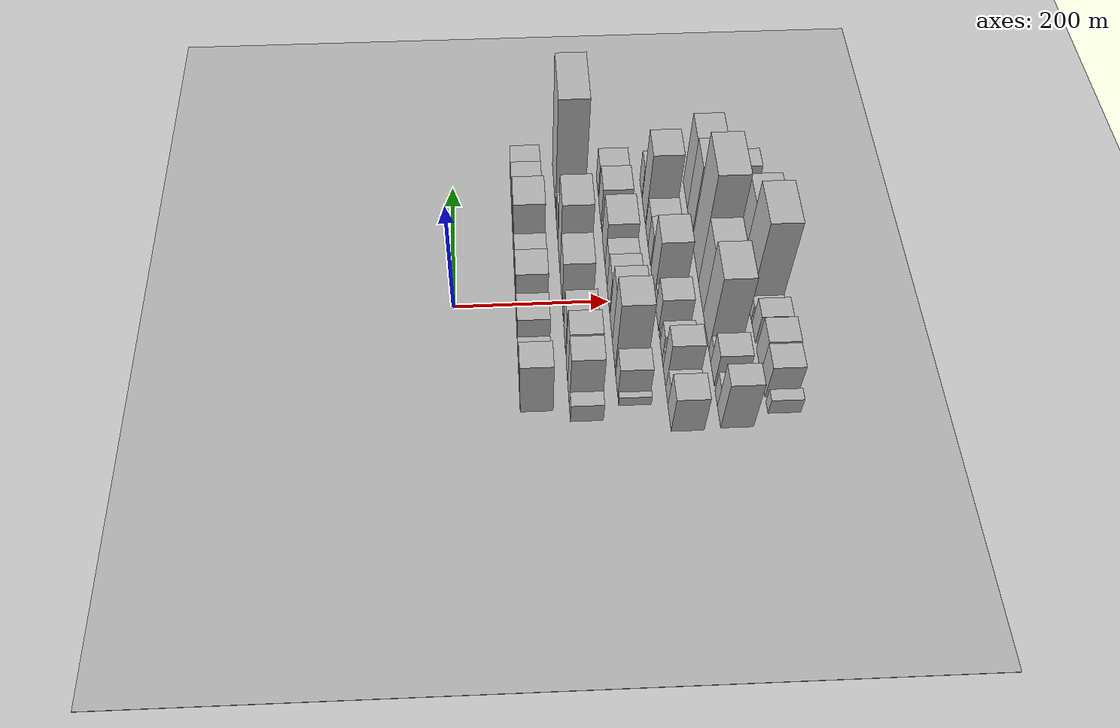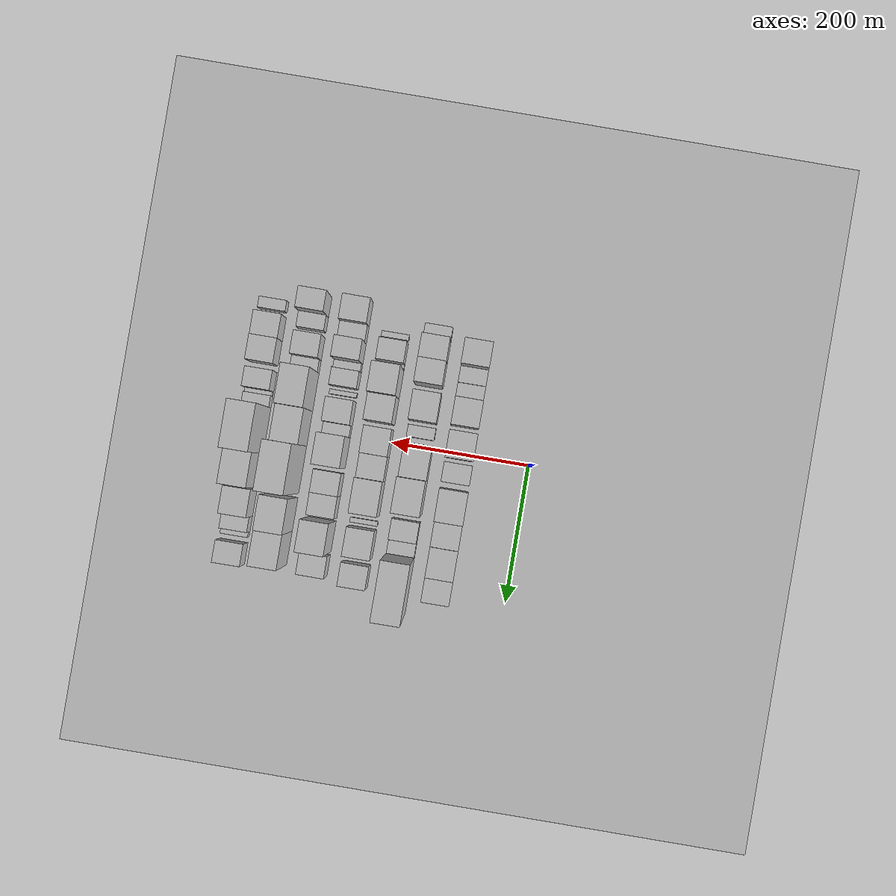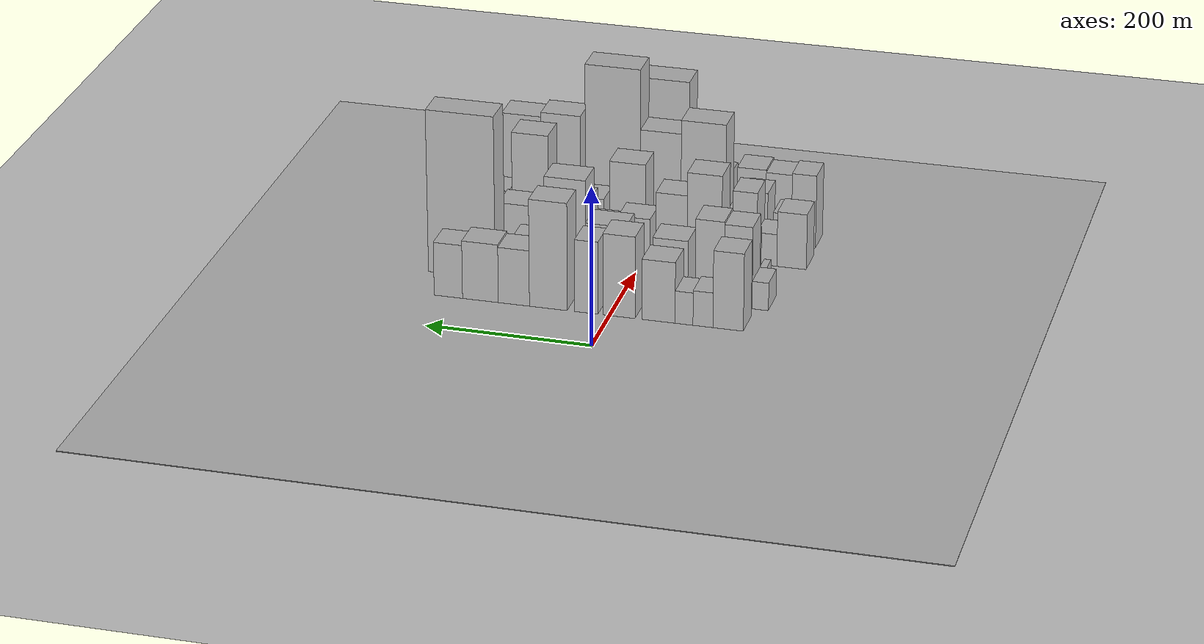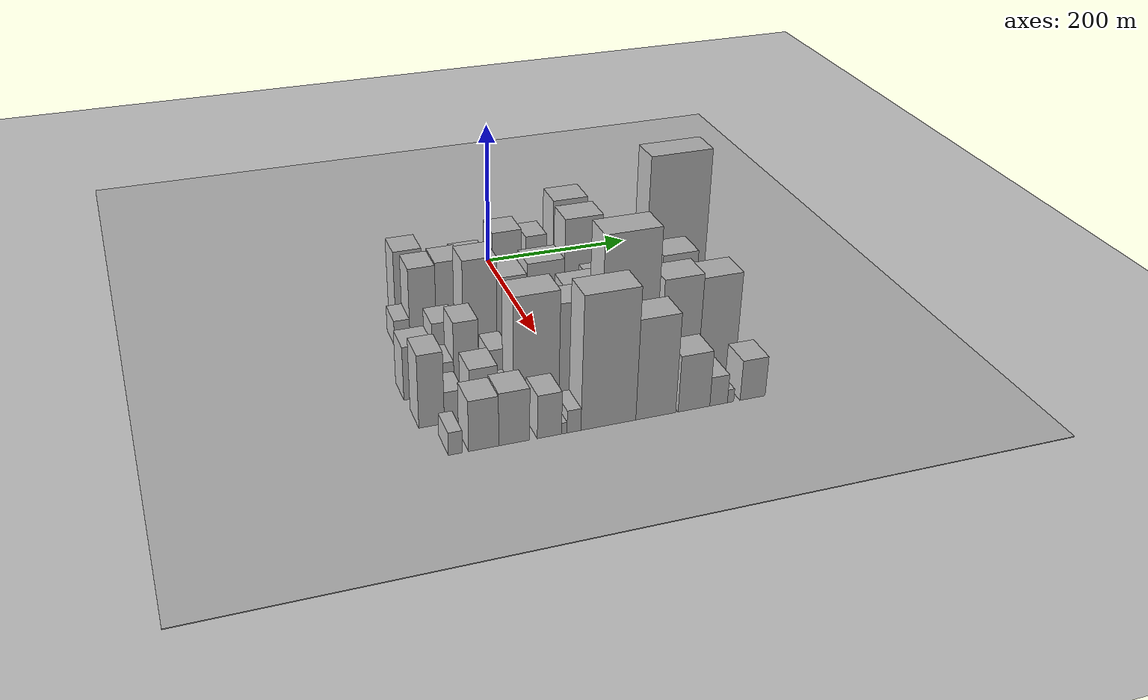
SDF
<sdf version="1.6">
 <world name="default">
  <include><name>ground_plane_1</name><uri>model://HANNAS_ground_plane</uri></include>
  <include>
   <name>ground_plane_2</name>
   <uri>model://HANNAS_ground_plane</uri>
   <pose>100 0 0  0 0 0</pose>
  </include>
  <model name="building_24">
   <static>1</static>
   <pose>100.0000 -141.7538 0 0.000000 0.000000 0.000000</pose>
   <link name="link">
    <pose>0 0 49.50 0 0 0</pose>
    <collision name="collision"><geometry><box><size>40.0000 36.2667 99.0000</size></box></geometry></collision>
    <visual name="visual">
     <cast_shadows>0</cast_shadows>
     <geometry><box><size>40.0000 36.2667 99.0000</size></box></geometry>
     <material>
      <script>
       <uri>model://HANNAS_wall/materials/scripts</uri>
       <uri>model://HANNAS_wall/materials/textures</uri>
       <name>vrc/HANNAS_wall</name>
      </script>
     </material>
    </visual>
   </link>
  </model>
  <model name="building_25">
   <static>1</static>
   <pose>100.0000 -111.7291 0 0.000000 0.000000 0.000000</pose>
   <link name="link">
    <pose>0 0 22.50 0 0 0</pose>
    <collision name="collision"><geometry><box><size>40.0000 23.7827 45.0000</size></box></geometry></collision>
    <visual name="visual">
     <cast_shadows>0</cast_shadows>
     <geometry><box><size>40.0000 23.7827 45.0000</size></box></geometry>
     <material>
      <script>
       <uri>model://HANNAS_wall/materials/scripts</uri>
       <uri>model://HANNAS_wall/materials/textures</uri>
       <name>vrc/HANNAS_wall</name>
      </script>
     </material>
    </visual>
   </link>
  </model>
  <model name="building_26">
   <static>1</static>
   <pose>100.0000 -89.1588 0 0.000000 0.000000 0.000000</pose>
   <link name="link">
    <pose>0 0 21.00 0 0 0</pose>
    <collision name="collision"><geometry><box><size>40.0000 21.3579 42.0000</size></box></geometry></collision>
    <visual name="visual">
     <cast_shadows>0</cast_shadows>
     <geometry><box><size>40.0000 21.3579 42.0000</size></box></geometry>
     <material>
      <script>
       <uri>model://HANNAS_wall/materials/scripts</uri>
       <uri>model://HANNAS_wall/materials/textures</uri>
       <name>vrc/HANNAS_wall</name>
      </script>
     </material>
    </visual>
   </link>
  </model>
  <model name="building_27">
   <static>1</static>
   <pose>100.0000 -58.5543 0 0.000000 0.000000 0.000000</pose>
   <link name="link">
    <pose>0 0 39.00 0 0 0</pose>
    <collision name="collision"><geometry><box><size>40.0000 39.8511 78.0000</size></box></geometry></collision>
    <visual name="visual">
     <cast_shadows>0</cast_shadows>
     <geometry><box><size>40.0000 39.8511 78.0000</size></box></geometry>
     <material>
      <script>
       <uri>model://HANNAS_wall/materials/scripts</uri>
       <uri>model://HANNAS_wall/materials/textures</uri>
       <name>vrc/HANNAS_wall</name>
      </script>
     </material>
    </visual>
   </link>
  </model>
  <model name="building_28">
   <static>1</static>
   <pose>100.0000 -11.2332 0 0.000000 0.000000 0.000000</pose>
   <link name="link">
    <pose>0 0 52.50 0 0 0</pose>
    <collision name="collision"><geometry><box><size>40.0000 38.7913 105.0000</size></box></geometry></collision>
    <visual name="visual">
     <cast_shadows>0</cast_shadows>
     <geometry><box><size>40.0000 38.7913 105.0000</size></box></geometry>
     <material>
      <script>
       <uri>model://HANNAS_wall/materials/scripts</uri>
       <uri>model://HANNAS_wall/materials/textures</uri>
       <name>vrc/HANNAS_wall</name>
      </script>
     </material>
    </visual>
   </link>
  </model>
  <model name="building_29">
   <static>1</static>
   <pose>100.0000 28.2649 0 0.000000 0.000000 0.000000</pose>
   <link name="link">
    <pose>0 0 46.50 0 0 0</pose>
    <collision name="collision"><geometry><box><size>40.0000 28.2048 93.0000</size></box></geometry></collision>
    <visual name="visual">
     <cast_shadows>0</cast_shadows>
     <geometry><box><size>40.0000 28.2048 93.0000</size></box></geometry>
     <material>
      <script>
       <uri>model://HANNAS_wall/materials/scripts</uri>
       <uri>model://HANNAS_wall/materials/textures</uri>
       <name>vrc/HANNAS_wall</name>
      </script>
     </material>
    </visual>
   </link>
  </model>
  <model name="building_30">
   <static>1</static>
   <pose>100.0000 74.3533 0 0.000000 0.000000 0.000000</pose>
   <link name="link">
    <pose>0 0 69.00 0 0 0</pose>
    <collision name="collision"><geometry><box><size>40.0000 45.9720 138.0000</size></box></geometry></collision>
    <visual name="visual">
     <cast_shadows>0</cast_shadows>
     <geometry><box><size>40.0000 45.9720 138.0000</size></box></geometry>
     <material>
      <script>
       <uri>model://HANNAS_wall/materials/scripts</uri>
       <uri>model://HANNAS_wall/materials/textures</uri>
       <name>vrc/HANNAS_wall</name>
      </script>
     </material>
    </visual>
   </link>
  </model>
  <model name="building_31">
   <static>1</static>
   <pose>100.0000 116.2808 0 0.000000 0.000000 0.000000</pose>
   <link name="link">
    <pose>0 0 36.00 0 0 0</pose>
    <collision name="collision"><geometry><box><size>40.0000 37.8829 72.0000</size></box></geometry></collision>
    <visual name="visual">
     <cast_shadows>0</cast_shadows>
     <geometry><box><size>40.0000 37.8829 72.0000</size></box></geometry>
     <material>
      <script>
       <uri>model://HANNAS_wall/materials/scripts</uri>
       <uri>model://HANNAS_wall/materials/textures</uri>
       <name>vrc/HANNAS_wall</name>
      </script>
     </material>
    </visual>
   </link>
  </model>
  <model name="building_32">
   <static>1</static>
   <pose>100.0000 157.1084 0 0.000000 0.000000 0.000000</pose>
   <link name="link">
    <pose>0 0 37.50 0 0 0</pose>
    <collision name="collision"><geometry><box><size>40.0000 43.7723 75.0000</size></box></geometry></collision>
    <visual name="visual">
     <cast_shadows>0</cast_shadows>
     <geometry><box><size>40.0000 43.7723 75.0000</size></box></geometry>
     <material>
      <script>
       <uri>model://HANNAS_wall/materials/scripts</uri>
       <uri>model://HANNAS_wall/materials/textures</uri>
       <name>vrc/HANNAS_wall</name>
      </script>
     </material>
    </visual>
   </link>
  </model>
  <model name="building_33">
   <static>1</static>
   <pose>100.0000 196.3960 0 0.000000 0.000000 0.000000</pose>
   <link name="link">
    <pose>0 0 34.50 0 0 0</pose>
    <collision name="collision"><geometry><box><size>40.0000 34.8030 69.0000</size></box></geometry></collision>
    <visual name="visual">
     <cast_shadows>0</cast_shadows>
     <geometry><box><size>40.0000 34.8030 69.0000</size></box></geometry>
     <material>
      <script>
       <uri>model://HANNAS_wall/materials/scripts</uri>
       <uri>model://HANNAS_wall/materials/textures</uri>
       <name>vrc/HANNAS_wall</name>
      </script>
     </material>
    </visual>
   </link>
  </model>
  <model name="building_78">
   <static>1</static>
   <pose>160.0000 -165.9343 0 0.000000 0.000000 0.000000</pose>
   <link name="link">
    <pose>0 0 18.00 0 0 0</pose>
    <collision name="collision"><geometry><box><size>40.0000 19.7301 36.0000</size></box></geometry></collision>
    <visual name="visual">
     <cast_shadows>0</cast_shadows>
     <geometry><box><size>40.0000 19.7301 36.0000</size></box></geometry>
     <material>
      <script>
       <uri>model://HANNAS_wall/materials/scripts</uri>
       <uri>model://HANNAS_wall/materials/textures</uri>
       <name>vrc/HANNAS_wall</name>
      </script>
     </material>
    </visual>
   </link>
  </model>
  <model name="building_79">
   <static>1</static>
   <pose>160.0000 -139.1676 0 0.000000 0.000000 0.000000</pose>
   <link name="link">
    <pose>0 0 52.50 0 0 0</pose>
    <collision name="collision"><geometry><box><size>40.0000 33.8033 105.0000</size></box></geometry></collision>
    <visual name="visual">
     <cast_shadows>0</cast_shadows>
     <geometry><box><size>40.0000 33.8033 105.0000</size></box></geometry>
     <material>
      <script>
       <uri>model://HANNAS_wall/materials/scripts</uri>
       <uri>model://HANNAS_wall/materials/textures</uri>
       <name>vrc/HANNAS_wall</name>
      </script>
     </material>
    </visual>
   </link>
  </model>
  <model name="building_80">
   <static>1</static>
   <pose>160.0000 -104.9373 0 0.000000 0.000000 0.000000</pose>
   <link name="link">
    <pose>0 0 54.00 0 0 0</pose>
    <collision name="collision"><geometry><box><size>40.0000 34.6573 108.0000</size></box></geometry></collision>
    <visual name="visual">
     <cast_shadows>0</cast_shadows>
     <geometry><box><size>40.0000 34.6573 108.0000</size></box></geometry>
     <material>
      <script>
       <uri>model://HANNAS_wall/materials/scripts</uri>
       <uri>model://HANNAS_wall/materials/textures</uri>
       <name>vrc/HANNAS_wall</name>
      </script>
     </material>
    </visual>
   </link>
  </model>
  <model name="building_81">
   <static>1</static>
   <pose>160.0000 -57.2592 0 0.000000 0.000000 0.000000</pose>
   <link name="link">
    <pose>0 0 39.00 0 0 0</pose>
    <collision name="collision"><geometry><box><size>40.0000 42.6989 78.0000</size></box></geometry></collision>
    <visual name="visual">
     <cast_shadows>0</cast_shadows>
     <geometry><box><size>40.0000 42.6989 78.0000</size></box></geometry>
     <material>
      <script>
       <uri>model://HANNAS_wall/materials/scripts</uri>
       <uri>model://HANNAS_wall/materials/textures</uri>
       <name>vrc/HANNAS_wall</name>
      </script>
     </material>
    </visual>
   </link>
  </model>
  <model name="building_82">
   <static>1</static>
   <pose>160.0000 -21.1083 0 0.000000 0.000000 0.000000</pose>
   <link name="link">
    <pose>0 0 15.00 0 0 0</pose>
    <collision name="collision"><geometry><box><size>40.0000 17.6029 30.0000</size></box></geometry></collision>
    <visual name="visual">
     <cast_shadows>0</cast_shadows>
     <geometry><box><size>40.0000 17.6029 30.0000</size></box></geometry>
     <material>
      <script>
       <uri>model://HANNAS_wall/materials/scripts</uri>
       <uri>model://HANNAS_wall/materials/textures</uri>
       <name>vrc/HANNAS_wall</name>
      </script>
     </material>
    </visual>
   </link>
  </model>
  <model name="building_83">
   <static>1</static>
   <pose>160.0000 21.0850 0 0.000000 0.000000 0.000000</pose>
   <link name="link">
    <pose>0 0 43.50 0 0 0</pose>
    <collision name="collision"><geometry><box><size>40.0000 48.7836 87.0000</size></box></geometry></collision>
    <visual name="visual">
     <cast_shadows>0</cast_shadows>
     <geometry><box><size>40.0000 48.7836 87.0000</size></box></geometry>
     <material>
      <script>
       <uri>model://HANNAS_wall/materials/scripts</uri>
       <uri>model://HANNAS_wall/materials/textures</uri>
       <name>vrc/HANNAS_wall</name>
      </script>
     </material>
    </visual>
   </link>
  </model>
  <model name="building_84">
   <static>1</static>
   <pose>160.0000 70.5295 0 0.000000 0.000000 0.000000</pose>
   <link name="link">
    <pose>0 0 70.50 0 0 0</pose>
    <collision name="collision"><geometry><box><size>40.0000 50.1054 141.0000</size></box></geometry></collision>
    <visual name="visual">
     <cast_shadows>0</cast_shadows>
     <geometry><box><size>40.0000 50.1054 141.0000</size></box></geometry>
     <material>
      <script>
       <uri>model://HANNAS_wall/materials/scripts</uri>
       <uri>model://HANNAS_wall/materials/textures</uri>
       <name>vrc/HANNAS_wall</name>
      </script>
     </material>
    </visual>
   </link>
  </model>
  <model name="building_85">
   <static>1</static>
   <pose>160.0000 120.6231 0 0.000000 0.000000 0.000000</pose>
   <link name="link">
    <pose>0 0 28.50 0 0 0</pose>
    <collision name="collision"><geometry><box><size>40.0000 30.0819 57.0000</size></box></geometry></collision>
    <visual name="visual">
     <cast_shadows>0</cast_shadows>
     <geometry><box><size>40.0000 30.0819 57.0000</size></box></geometry>
     <material>
      <script>
       <uri>model://HANNAS_wall/materials/scripts</uri>
       <uri>model://HANNAS_wall/materials/textures</uri>
       <name>vrc/HANNAS_wall</name>
      </script>
     </material>
    </visual>
   </link>
  </model>
  <model name="building_86">
   <static>1</static>
   <pose>160.0000 146.0465 0 0.000000 0.000000 0.000000</pose>
   <link name="link">
    <pose>0 0 18.00 0 0 0</pose>
    <collision name="collision"><geometry><box><size>40.0000 20.7649 36.0000</size></box></geometry></collision>
    <visual name="visual">
     <cast_shadows>0</cast_shadows>
     <geometry><box><size>40.0000 20.7649 36.0000</size></box></geometry>
     <material>
      <script>
       <uri>model://HANNAS_wall/materials/scripts</uri>
       <uri>model://HANNAS_wall/materials/textures</uri>
       <name>vrc/HANNAS_wall</name>
      </script>
     </material>
    </visual>
   </link>
  </model>
  <model name="building_87">
   <static>1</static>
   <pose>160.0000 197.8343 0 0.000000 0.000000 0.000000</pose>
   <link name="link">
    <pose>0 0 105.00 0 0 0</pose>
    <collision name="collision"><geometry><box><size>40.0000 82.8106 210.0000</size></box></geometry></collision>
    <visual name="visual">
     <cast_shadows>0</cast_shadows>
     <geometry><box><size>40.0000 82.8106 210.0000</size></box></geometry>
     <material>
      <script>
       <uri>model://HANNAS_wall/materials/scripts</uri>
       <uri>model://HANNAS_wall/materials/textures</uri>
       <name>vrc/HANNAS_wall</name>
      </script>
     </material>
    </visual>
   </link>
  </model>
  <model name="building_133">
   <static>1</static>
   <pose>220.0000 -151.7429 0 0.000000 0.000000 0.000000</pose>
   <link name="link">
    <pose>0 0 9.00 0 0 0</pose>
    <collision name="collision"><geometry><box><size>40.0000 8.4132 18.0000</size></box></geometry></collision>
    <visual name="visual">
     <cast_shadows>0</cast_shadows>
     <geometry><box><size>40.0000 8.4132 18.0000</size></box></geometry>
     <material>
      <script>
       <uri>model://HANNAS_wall/materials/scripts</uri>
       <uri>model://HANNAS_wall/materials/textures</uri>
       <name>vrc/HANNAS_wall</name>
      </script>
     </material>
    </visual>
   </link>
  </model>
  <model name="building_134">
   <static>1</static>
   <pose>220.0000 -127.9981 0 0.000000 0.000000 0.000000</pose>
   <link name="link">
    <pose>0 0 30.00 0 0 0</pose>
    <collision name="collision"><geometry><box><size>40.0000 31.0763 60.0000</size></box></geometry></collision>
    <visual name="visual">
     <cast_shadows>0</cast_shadows>
     <geometry><box><size>40.0000 31.0763 60.0000</size></box></geometry>
     <material>
      <script>
       <uri>model://HANNAS_wall/materials/scripts</uri>
       <uri>model://HANNAS_wall/materials/textures</uri>
       <name>vrc/HANNAS_wall</name>
      </script>
     </material>
    </visual>
   </link>
  </model>
  <model name="building_135">
   <static>1</static>
   <pose>220.0000 -108.5840 0 0.000000 0.000000 0.000000</pose>
   <link name="link">
    <pose>0 0 9.00 0 0 0</pose>
    <collision name="collision"><geometry><box><size>40.0000 7.7519 18.0000</size></box></geometry></collision>
    <visual name="visual">
     <cast_shadows>0</cast_shadows>
     <geometry><box><size>40.0000 7.7519 18.0000</size></box></geometry>
     <material>
      <script>
       <uri>model://HANNAS_wall/materials/scripts</uri>
       <uri>model://HANNAS_wall/materials/textures</uri>
       <name>vrc/HANNAS_wall</name>
      </script>
     </material>
    </visual>
   </link>
  </model>
  <model name="building_136">
   <static>1</static>
   <pose>220.0000 -83.6305 0 0.000000 0.000000 0.000000</pose>
   <link name="link">
    <pose>0 0 69.00 0 0 0</pose>
    <collision name="collision"><geometry><box><size>40.0000 42.1553 138.0000</size></box></geometry></collision>
    <visual name="visual">
     <cast_shadows>0</cast_shadows>
     <geometry><box><size>40.0000 42.1553 138.0000</size></box></geometry>
     <material>
      <script>
       <uri>model://HANNAS_wall/materials/scripts</uri>
       <uri>model://HANNAS_wall/materials/textures</uri>
       <name>vrc/HANNAS_wall</name>
      </script>
     </material>
    </visual>
   </link>
  </model>
  <model name="building_137">
   <static>1</static>
   <pose>220.0000 -43.5327 0 0.000000 0.000000 0.000000</pose>
   <link name="link">
    <pose>0 0 54.00 0 0 0</pose>
    <collision name="collision"><geometry><box><size>40.0000 38.0402 108.0000</size></box></geometry></collision>
    <visual name="visual">
     <cast_shadows>0</cast_shadows>
     <geometry><box><size>40.0000 38.0402 108.0000</size></box></geometry>
     <material>
      <script>
       <uri>model://HANNAS_wall/materials/scripts</uri>
       <uri>model://HANNAS_wall/materials/textures</uri>
       <name>vrc/HANNAS_wall</name>
      </script>
     </material>
    </visual>
   </link>
  </model>
  <model name="building_138">
   <static>1</static>
   <pose>220.0000 2.1205 0 0.000000 0.000000 0.000000</pose>
   <link name="link">
    <pose>0 0 36.00 0 0 0</pose>
    <collision name="collision"><geometry><box><size>40.0000 39.2662 72.0000</size></box></geometry></collision>
    <visual name="visual">
     <cast_shadows>0</cast_shadows>
     <geometry><box><size>40.0000 39.2662 72.0000</size></box></geometry>
     <material>
      <script>
       <uri>model://HANNAS_wall/materials/scripts</uri>
       <uri>model://HANNAS_wall/materials/textures</uri>
       <name>vrc/HANNAS_wall</name>
      </script>
     </material>
    </visual>
   </link>
  </model>
  <model name="building_139">
   <static>1</static>
   <pose>220.0000 39.3749 0 0.000000 0.000000 0.000000</pose>
   <link name="link">
    <pose>0 0 30.00 0 0 0</pose>
    <collision name="collision"><geometry><box><size>40.0000 35.2426 60.0000</size></box></geometry></collision>
    <visual name="visual">
     <cast_shadows>0</cast_shadows>
     <geometry><box><size>40.0000 35.2426 60.0000</size></box></geometry>
     <material>
      <script>
       <uri>model://HANNAS_wall/materials/scripts</uri>
       <uri>model://HANNAS_wall/materials/textures</uri>
       <name>vrc/HANNAS_wall</name>
      </script>
     </material>
    </visual>
   </link>
  </model>
  <model name="building_140">
   <static>1</static>
   <pose>220.0000 81.9852 0 0.000000 0.000000 0.000000</pose>
   <link name="link">
    <pose>0 0 43.50 0 0 0</pose>
    <collision name="collision"><geometry><box><size>40.0000 49.9781 87.0000</size></box></geometry></collision>
    <visual name="visual">
     <cast_shadows>0</cast_shadows>
     <geometry><box><size>40.0000 49.9781 87.0000</size></box></geometry>
     <material>
      <script>
       <uri>model://HANNAS_wall/materials/scripts</uri>
       <uri>model://HANNAS_wall/materials/textures</uri>
       <name>vrc/HANNAS_wall</name>
      </script>
     </material>
    </visual>
   </link>
  </model>
  <model name="building_141">
   <static>1</static>
   <pose>220.0000 118.4925 0 0.000000 0.000000 0.000000</pose>
   <link name="link">
    <pose>0 0 7.50 0 0 0</pose>
    <collision name="collision"><geometry><box><size>40.0000 7.0364 15.0000</size></box></geometry></collision>
    <visual name="visual">
     <cast_shadows>0</cast_shadows>
     <geometry><box><size>40.0000 7.0364 15.0000</size></box></geometry>
     <material>
      <script>
       <uri>model://HANNAS_wall/materials/scripts</uri>
       <uri>model://HANNAS_wall/materials/textures</uri>
       <name>vrc/HANNAS_wall</name>
      </script>
     </material>
    </visual>
   </link>
  </model>
  <model name="building_142">
   <static>1</static>
   <pose>220.0000 148.0698 0 0.000000 0.000000 0.000000</pose>
   <link name="link">
    <pose>0 0 36.00 0 0 0</pose>
    <collision name="collision"><geometry><box><size>40.0000 42.1183 72.0000</size></box></geometry></collision>
    <visual name="visual">
     <cast_shadows>0</cast_shadows>
     <geometry><box><size>40.0000 42.1183 72.0000</size></box></geometry>
     <material>
      <script>
       <uri>model://HANNAS_wall/materials/scripts</uri>
       <uri>model://HANNAS_wall/materials/textures</uri>
       <name>vrc/HANNAS_wall</name>
      </script>
     </material>
    </visual>
   </link>
  </model>
  <model name="building_143">
   <static>1</static>
   <pose>220.0000 195.1266 0 0.000000 0.000000 0.000000</pose>
   <link name="link">
    <pose>0 0 30.00 0 0 0</pose>
    <collision name="collision"><geometry><box><size>40.0000 33.9952 60.0000</size></box></geometry></collision>
    <visual name="visual">
     <cast_shadows>0</cast_shadows>
     <geometry><box><size>40.0000 33.9952 60.0000</size></box></geometry>
     <material>
      <script>
       <uri>model://HANNAS_wall/materials/scripts</uri>
       <uri>model://HANNAS_wall/materials/textures</uri>
       <name>vrc/HANNAS_wall</name>
      </script>
     </material>
    </visual>
   </link>
  </model>
  <model name="building_178">
   <static>1</static>
   <pose>280.0000 -176.3149 0 0.000000 0.000000 0.000000</pose>
   <link name="link">
    <pose>0 0 36.00 0 0 0</pose>
    <collision name="collision"><geometry><box><size>40.0000 36.0139 72.0000</size></box></geometry></collision>
    <visual name="visual">
     <cast_shadows>0</cast_shadows>
     <geometry><box><size>40.0000 36.0139 72.0000</size></box></geometry>
     <material>
      <script>
       <uri>model://HANNAS_wall/materials/scripts</uri>
       <uri>model://HANNAS_wall/materials/textures</uri>
       <name>vrc/HANNAS_wall</name>
      </script>
     </material>
    </visual>
   </link>
  </model>
  <model name="building_179">
   <static>1</static>
   <pose>280.0000 -145.9693 0 0.000000 0.000000 0.000000</pose>
   <link name="link">
    <pose>0 0 21.00 0 0 0</pose>
    <collision name="collision"><geometry><box><size>40.0000 24.6773 42.0000</size></box></geometry></collision>
    <visual name="visual">
     <cast_shadows>0</cast_shadows>
     <geometry><box><size>40.0000 24.6773 42.0000</size></box></geometry>
     <material>
      <script>
       <uri>model://HANNAS_wall/materials/scripts</uri>
       <uri>model://HANNAS_wall/materials/textures</uri>
       <name>vrc/HANNAS_wall</name>
      </script>
     </material>
    </visual>
   </link>
  </model>
  <model name="building_180">
   <static>1</static>
   <pose>280.0000 -118.5868 0 0.000000 0.000000 0.000000</pose>
   <link name="link">
    <pose>0 0 46.50 0 0 0</pose>
    <collision name="collision"><geometry><box><size>40.0000 30.0878 93.0000</size></box></geometry></collision>
    <visual name="visual">
     <cast_shadows>0</cast_shadows>
     <geometry><box><size>40.0000 30.0878 93.0000</size></box></geometry>
     <material>
      <script>
       <uri>model://HANNAS_wall/materials/scripts</uri>
       <uri>model://HANNAS_wall/materials/textures</uri>
       <name>vrc/HANNAS_wall</name>
      </script>
     </material>
    </visual>
   </link>
  </model>
  <model name="building_181">
   <static>1</static>
   <pose>280.0000 -97.4114 0 0.000000 0.000000 0.000000</pose>
   <link name="link">
    <pose>0 0 13.50 0 0 0</pose>
    <collision name="collision"><geometry><box><size>40.0000 12.2630 27.0000</size></box></geometry></collision>
    <visual name="visual">
     <cast_shadows>0</cast_shadows>
     <geometry><box><size>40.0000 12.2630 27.0000</size></box></geometry>
     <material>
      <script>
       <uri>model://HANNAS_wall/materials/scripts</uri>
       <uri>model://HANNAS_wall/materials/textures</uri>
       <name>vrc/HANNAS_wall</name>
      </script>
     </material>
    </visual>
   </link>
  </model>
  <model name="building_182">
   <static>1</static>
   <pose>280.0000 -78.7803 0 0.000000 0.000000 0.000000</pose>
   <link name="link">
    <pose>0 0 24.00 0 0 0</pose>
    <collision name="collision"><geometry><box><size>40.0000 24.9993 48.0000</size></box></geometry></collision>
    <visual name="visual">
     <cast_shadows>0</cast_shadows>
     <geometry><box><size>40.0000 24.9993 48.0000</size></box></geometry>
     <material>
      <script>
       <uri>model://HANNAS_wall/materials/scripts</uri>
       <uri>model://HANNAS_wall/materials/textures</uri>
       <name>vrc/HANNAS_wall</name>
      </script>
     </material>
    </visual>
   </link>
  </model>
  <model name="building_183">
   <static>1</static>
   <pose>280.0000 -57.8114 0 0.000000 0.000000 0.000000</pose>
   <link name="link">
    <pose>0 0 7.50 0 0 0</pose>
    <collision name="collision"><geometry><box><size>40.0000 6.9386 15.0000</size></box></geometry></collision>
    <visual name="visual">
     <cast_shadows>0</cast_shadows>
     <geometry><box><size>40.0000 6.9386 15.0000</size></box></geometry>
     <material>
      <script>
       <uri>model://HANNAS_wall/materials/scripts</uri>
       <uri>model://HANNAS_wall/materials/textures</uri>
       <name>vrc/HANNAS_wall</name>
      </script>
     </material>
    </visual>
   </link>
  </model>
  <model name="building_184">
   <static>1</static>
   <pose>280.0000 -30.9352 0 0.000000 0.000000 0.000000</pose>
   <link name="link">
    <pose>0 0 33.00 0 0 0</pose>
    <collision name="collision"><geometry><box><size>40.0000 34.8137 66.0000</size></box></geometry></collision>
    <visual name="visual">
     <cast_shadows>0</cast_shadows>
     <geometry><box><size>40.0000 34.8137 66.0000</size></box></geometry>
     <material>
      <script>
       <uri>model://HANNAS_wall/materials/scripts</uri>
       <uri>model://HANNAS_wall/materials/textures</uri>
       <name>vrc/HANNAS_wall</name>
      </script>
     </material>
    </visual>
   </link>
  </model>
  <model name="building_185">
   <static>1</static>
   <pose>280.0000 -5.0085 0 0.000000 0.000000 0.000000</pose>
   <link name="link">
    <pose>0 0 15.00 0 0 0</pose>
    <collision name="collision"><geometry><box><size>40.0000 17.0398 30.0000</size></box></geometry></collision>
    <visual name="visual">
     <cast_shadows>0</cast_shadows>
     <geometry><box><size>40.0000 17.0398 30.0000</size></box></geometry>
     <material>
      <script>
       <uri>model://HANNAS_wall/materials/scripts</uri>
       <uri>model://HANNAS_wall/materials/textures</uri>
       <name>vrc/HANNAS_wall</name>
      </script>
     </material>
    </visual>
   </link>
  </model>
  <model name="building_186">
   <static>1</static>
   <pose>280.0000 25.8724 0 0.000000 0.000000 0.000000</pose>
   <link name="link">
    <pose>0 0 57.00 0 0 0</pose>
    <collision name="collision"><geometry><box><size>40.0000 44.7221 114.0000</size></box></geometry></collision>
    <visual name="visual">
     <cast_shadows>0</cast_shadows>
     <geometry><box><size>40.0000 44.7221 114.0000</size></box></geometry>
     <material>
      <script>
       <uri>model://HANNAS_wall/materials/scripts</uri>
       <uri>model://HANNAS_wall/materials/textures</uri>
       <name>vrc/HANNAS_wall</name>
      </script>
     </material>
    </visual>
   </link>
  </model>
  <model name="building_187">
   <static>1</static>
   <pose>280.0000 71.8107 0 0.000000 0.000000 0.000000</pose>
   <link name="link">
    <pose>0 0 31.50 0 0 0</pose>
    <collision name="collision"><geometry><box><size>40.0000 33.1545 63.0000</size></box></geometry></collision>
    <visual name="visual">
     <cast_shadows>0</cast_shadows>
     <geometry><box><size>40.0000 33.1545 63.0000</size></box></geometry>
     <material>
      <script>
       <uri>model://HANNAS_wall/materials/scripts</uri>
       <uri>model://HANNAS_wall/materials/textures</uri>
       <name>vrc/HANNAS_wall</name>
      </script>
     </material>
    </visual>
   </link>
  </model>
  <model name="building_188">
   <static>1</static>
   <pose>280.0000 104.4661 0 0.000000 0.000000 0.000000</pose>
   <link name="link">
    <pose>0 0 30.00 0 0 0</pose>
    <collision name="collision"><geometry><box><size>40.0000 32.1562 60.0000</size></box></geometry></collision>
    <visual name="visual">
     <cast_shadows>0</cast_shadows>
     <geometry><box><size>40.0000 32.1562 60.0000</size></box></geometry>
     <material>
      <script>
       <uri>model://HANNAS_wall/materials/scripts</uri>
       <uri>model://HANNAS_wall/materials/textures</uri>
       <name>vrc/HANNAS_wall</name>
      </script>
     </material>
    </visual>
   </link>
  </model>
  <model name="building_189">
   <static>1</static>
   <pose>280.0000 147.1426 0 0.000000 0.000000 0.000000</pose>
   <link name="link">
    <pose>0 0 69.00 0 0 0</pose>
    <collision name="collision"><geometry><box><size>40.0000 45.1970 138.0000</size></box></geometry></collision>
    <visual name="visual">
     <cast_shadows>0</cast_shadows>
     <geometry><box><size>40.0000 45.1970 138.0000</size></box></geometry>
     <material>
      <script>
       <uri>model://HANNAS_wall/materials/scripts</uri>
       <uri>model://HANNAS_wall/materials/textures</uri>
       <name>vrc/HANNAS_wall</name>
      </script>
     </material>
    </visual>
   </link>
  </model>
  <model name="building_190">
   <static>1</static>
   <pose>280.0000 189.6095 0 0.000000 0.000000 0.000000</pose>
   <link name="link">
    <pose>0 0 30.00 0 0 0</pose>
    <collision name="collision"><geometry><box><size>40.0000 31.7368 60.0000</size></box></geometry></collision>
    <visual name="visual">
     <cast_shadows>0</cast_shadows>
     <geometry><box><size>40.0000 31.7368 60.0000</size></box></geometry>
     <material>
      <script>
       <uri>model://HANNAS_wall/materials/scripts</uri>
       <uri>model://HANNAS_wall/materials/textures</uri>
       <name>vrc/HANNAS_wall</name>
      </script>
     </material>
    </visual>
   </link>
  </model>
  <model name="building_237">
   <static>1</static>
   <pose>340.0000 -177.1933 0 0.000000 0.000000 0.000000</pose>
   <link name="link">
    <pose>0 0 48.00 0 0 0</pose>
    <collision name="collision"><geometry><box><size>40.0000 29.7897 96.0000</size></box></geometry></collision>
    <visual name="visual">
     <cast_shadows>0</cast_shadows>
     <geometry><box><size>40.0000 29.7897 96.0000</size></box></geometry>
     <material>
      <script>
       <uri>model://HANNAS_wall/materials/scripts</uri>
       <uri>model://HANNAS_wall/materials/textures</uri>
       <name>vrc/HANNAS_wall</name>
      </script>
     </material>
    </visual>
   </link>
  </model>
  <model name="building_238">
   <static>1</static>
   <pose>340.0000 -151.0169 0 0.000000 0.000000 0.000000</pose>
   <link name="link">
    <pose>0 0 21.00 0 0 0</pose>
    <collision name="collision"><geometry><box><size>40.0000 22.5632 42.0000</size></box></geometry></collision>
    <visual name="visual">
     <cast_shadows>0</cast_shadows>
     <geometry><box><size>40.0000 22.5632 42.0000</size></box></geometry>
     <material>
      <script>
       <uri>model://HANNAS_wall/materials/scripts</uri>
       <uri>model://HANNAS_wall/materials/textures</uri>
       <name>vrc/HANNAS_wall</name>
      </script>
     </material>
    </visual>
   </link>
  </model>
  <model name="building_239">
   <static>1</static>
   <pose>340.0000 -116.0071 0 0.000000 0.000000 0.000000</pose>
   <link name="link">
    <pose>0 0 33.00 0 0 0</pose>
    <collision name="collision"><geometry><box><size>40.0000 33.4564 66.0000</size></box></geometry></collision>
    <visual name="visual">
     <cast_shadows>0</cast_shadows>
     <geometry><box><size>40.0000 33.4564 66.0000</size></box></geometry>
     <material>
      <script>
       <uri>model://HANNAS_wall/materials/scripts</uri>
       <uri>model://HANNAS_wall/materials/textures</uri>
       <name>vrc/HANNAS_wall</name>
      </script>
     </material>
    </visual>
   </link>
  </model>
  <model name="building_240">
   <static>1</static>
   <pose>340.0000 -90.0394 0 0.000000 0.000000 0.000000</pose>
   <link name="link">
    <pose>0 0 16.50 0 0 0</pose>
    <collision name="collision"><geometry><box><size>40.0000 18.4788 33.0000</size></box></geometry></collision>
    <visual name="visual">
     <cast_shadows>0</cast_shadows>
     <geometry><box><size>40.0000 18.4788 33.0000</size></box></geometry>
     <material>
      <script>
       <uri>model://HANNAS_wall/materials/scripts</uri>
       <uri>model://HANNAS_wall/materials/textures</uri>
       <name>vrc/HANNAS_wall</name>
      </script>
     </material>
    </visual>
   </link>
  </model>
  <model name="building_241">
   <static>1</static>
   <pose>340.0000 -52.9819 0 0.000000 0.000000 0.000000</pose>
   <link name="link">
    <pose>0 0 75.00 0 0 0</pose>
    <collision name="collision"><geometry><box><size>40.0000 55.6363 150.0000</size></box></geometry></collision>
    <visual name="visual">
     <cast_shadows>0</cast_shadows>
     <geometry><box><size>40.0000 55.6363 150.0000</size></box></geometry>
     <material>
      <script>
       <uri>model://HANNAS_wall/materials/scripts</uri>
       <uri>model://HANNAS_wall/materials/textures</uri>
       <name>vrc/HANNAS_wall</name>
      </script>
     </material>
    </visual>
   </link>
  </model>
  <model name="building_242">
   <static>1</static>
   <pose>340.0000 0.1352 0 0.000000 0.000000 0.000000</pose>
   <link name="link">
    <pose>0 0 66.00 0 0 0</pose>
    <collision name="collision"><geometry><box><size>40.0000 50.5979 132.0000</size></box></geometry></collision>
    <visual name="visual">
     <cast_shadows>0</cast_shadows>
     <geometry><box><size>40.0000 50.5979 132.0000</size></box></geometry>
     <material>
      <script>
       <uri>model://HANNAS_wall/materials/scripts</uri>
       <uri>model://HANNAS_wall/materials/textures</uri>
       <name>vrc/HANNAS_wall</name>
      </script>
     </material>
    </visual>
   </link>
  </model>
  <model name="building_243">
   <static>1</static>
   <pose>340.0000 59.9697 0 0.000000 0.000000 0.000000</pose>
   <link name="link">
    <pose>0 0 105.00 0 0 0</pose>
    <collision name="collision"><geometry><box><size>40.0000 69.0711 210.0000</size></box></geometry></collision>
    <visual name="visual">
     <cast_shadows>0</cast_shadows>
     <geometry><box><size>40.0000 69.0711 210.0000</size></box></geometry>
     <material>
      <script>
       <uri>model://HANNAS_wall/materials/scripts</uri>
       <uri>model://HANNAS_wall/materials/textures</uri>
       <name>vrc/HANNAS_wall</name>
      </script>
     </material>
    </visual>
   </link>
  </model>
  <model name="building_244">
   <static>1</static>
   <pose>340.0000 125.1820 0 0.000000 0.000000 0.000000</pose>
   <link name="link">
    <pose>0 0 70.50 0 0 0</pose>
    <collision name="collision"><geometry><box><size>40.0000 49.3534 141.0000</size></box></geometry></collision>
    <visual name="visual">
     <cast_shadows>0</cast_shadows>
     <geometry><box><size>40.0000 49.3534 141.0000</size></box></geometry>
     <material>
      <script>
       <uri>model://HANNAS_wall/materials/scripts</uri>
       <uri>model://HANNAS_wall/materials/textures</uri>
       <name>vrc/HANNAS_wall</name>
      </script>
     </material>
    </visual>
   </link>
  </model>
  <model name="building_245">
   <static>1</static>
   <pose>340.0000 174.4990 0 0.000000 0.000000 0.000000</pose>
   <link name="link">
    <pose>0 0 67.50 0 0 0</pose>
    <collision name="collision"><geometry><box><size>40.0000 49.2808 135.0000</size></box></geometry></collision>
    <visual name="visual">
     <cast_shadows>0</cast_shadows>
     <geometry><box><size>40.0000 49.2808 135.0000</size></box></geometry>
     <material>
      <script>
       <uri>model://HANNAS_wall/materials/scripts</uri>
       <uri>model://HANNAS_wall/materials/textures</uri>
       <name>vrc/HANNAS_wall</name>
      </script>
     </material>
    </visual>
   </link>
  </model>
  <model name="building_289">
   <static>1</static>
   <pose>400.0000 -166.4934 0 0.000000 0.000000 0.000000</pose>
   <link name="link">
    <pose>0 0 15.00 0 0 0</pose>
    <collision name="collision"><geometry><box><size>40.0000 15.9056 30.0000</size></box></geometry></collision>
    <visual name="visual">
     <cast_shadows>0</cast_shadows>
     <geometry><box><size>40.0000 15.9056 30.0000</size></box></geometry>
     <material>
      <script>
       <uri>model://HANNAS_wall/materials/scripts</uri>
       <uri>model://HANNAS_wall/materials/textures</uri>
       <name>vrc/HANNAS_wall</name>
      </script>
     </material>
    </visual>
   </link>
  </model>
  <model name="building_290">
   <static>1</static>
   <pose>400.0000 -134.2088 0 0.000000 0.000000 0.000000</pose>
   <link name="link">
    <pose>0 0 33.00 0 0 0</pose>
    <collision name="collision"><geometry><box><size>40.0000 34.6636 66.0000</size></box></geometry></collision>
    <visual name="visual">
     <cast_shadows>0</cast_shadows>
     <geometry><box><size>40.0000 34.6636 66.0000</size></box></geometry>
     <material>
      <script>
       <uri>model://HANNAS_wall/materials/scripts</uri>
       <uri>model://HANNAS_wall/materials/textures</uri>
       <name>vrc/HANNAS_wall</name>
      </script>
     </material>
    </visual>
   </link>
  </model>
  <model name="building_291">
   <static>1</static>
   <pose>400.0000 -98.8703 0 0.000000 0.000000 0.000000</pose>
   <link name="link">
    <pose>0 0 34.50 0 0 0</pose>
    <collision name="collision"><geometry><box><size>40.0000 36.0134 69.0000</size></box></geometry></collision>
    <visual name="visual">
     <cast_shadows>0</cast_shadows>
     <geometry><box><size>40.0000 36.0134 69.0000</size></box></geometry>
     <material>
      <script>
       <uri>model://HANNAS_wall/materials/scripts</uri>
       <uri>model://HANNAS_wall/materials/textures</uri>
       <name>vrc/HANNAS_wall</name>
      </script>
     </material>
    </visual>
   </link>
  </model>
  <model name="building_292">
   <static>1</static>
   <pose>400.0000 -57.5211 0 0.000000 0.000000 0.000000</pose>
   <link name="link">
    <pose>0 0 28.50 0 0 0</pose>
    <collision name="collision"><geometry><box><size>40.0000 28.6850 57.0000</size></box></geometry></collision>
    <visual name="visual">
     <cast_shadows>0</cast_shadows>
     <geometry><box><size>40.0000 28.6850 57.0000</size></box></geometry>
     <material>
      <script>
       <uri>model://HANNAS_wall/materials/scripts</uri>
       <uri>model://HANNAS_wall/materials/textures</uri>
       <name>vrc/HANNAS_wall</name>
      </script>
     </material>
    </visual>
   </link>
  </model>
  <model name="building_293">
   <static>1</static>
   <pose>400.0000 -39.9709 0 0.000000 0.000000 0.000000</pose>
   <link name="link">
    <pose>0 0 7.50 0 0 0</pose>
    <collision name="collision"><geometry><box><size>40.0000 6.4152 15.0000</size></box></geometry></collision>
    <visual name="visual">
     <cast_shadows>0</cast_shadows>
     <geometry><box><size>40.0000 6.4152 15.0000</size></box></geometry>
     <material>
      <script>
       <uri>model://HANNAS_wall/materials/scripts</uri>
       <uri>model://HANNAS_wall/materials/textures</uri>
       <name>vrc/HANNAS_wall</name>
      </script>
     </material>
    </visual>
   </link>
  </model>
  <model name="building_294">
   <static>1</static>
   <pose>400.0000 -28.4716 0 0.000000 0.000000 0.000000</pose>
   <link name="link">
    <pose>0 0 15.00 0 0 0</pose>
    <collision name="collision"><geometry><box><size>40.0000 16.5833 30.0000</size></box></geometry></collision>
    <visual name="visual">
     <cast_shadows>0</cast_shadows>
     <geometry><box><size>40.0000 16.5833 30.0000</size></box></geometry>
     <material>
      <script>
       <uri>model://HANNAS_wall/materials/scripts</uri>
       <uri>model://HANNAS_wall/materials/textures</uri>
       <name>vrc/HANNAS_wall</name>
      </script>
     </material>
    </visual>
   </link>
  </model>
  <model name="building_295">
   <static>1</static>
   <pose>400.0000 13.0426 0 0.000000 0.000000 0.000000</pose>
   <link name="link">
    <pose>0 0 87.00 0 0 0</pose>
    <collision name="collision"><geometry><box><size>40.0000 66.4451 174.0000</size></box></geometry></collision>
    <visual name="visual">
     <cast_shadows>0</cast_shadows>
     <geometry><box><size>40.0000 66.4451 174.0000</size></box></geometry>
     <material>
      <script>
       <uri>model://HANNAS_wall/materials/scripts</uri>
       <uri>model://HANNAS_wall/materials/textures</uri>
       <name>vrc/HANNAS_wall</name>
      </script>
     </material>
    </visual>
   </link>
  </model>
  <model name="building_296">
   <static>1</static>
   <pose>400.0000 70.8747 0 0.000000 0.000000 0.000000</pose>
   <link name="link">
    <pose>0 0 66.00 0 0 0</pose>
    <collision name="collision"><geometry><box><size>40.0000 49.2193 132.0000</size></box></geometry></collision>
    <visual name="visual">
     <cast_shadows>0</cast_shadows>
     <geometry><box><size>40.0000 49.2193 132.0000</size></box></geometry>
     <material>
      <script>
       <uri>model://HANNAS_wall/materials/scripts</uri>
       <uri>model://HANNAS_wall/materials/textures</uri>
       <name>vrc/HANNAS_wall</name>
      </script>
     </material>
    </visual>
   </link>
  </model>
  <model name="building_297">
   <static>1</static>
   <pose>400.0000 118.3382 0 0.000000 0.000000 0.000000</pose>
   <link name="link">
    <pose>0 0 37.50 0 0 0</pose>
    <collision name="collision"><geometry><box><size>40.0000 39.7076 75.0000</size></box></geometry></collision>
    <visual name="visual">
     <cast_shadows>0</cast_shadows>
     <geometry><box><size>40.0000 39.7076 75.0000</size></box></geometry>
     <material>
      <script>
       <uri>model://HANNAS_wall/materials/scripts</uri>
       <uri>model://HANNAS_wall/materials/textures</uri>
       <name>vrc/HANNAS_wall</name>
      </script>
     </material>
    </visual>
   </link>
  </model>
  <model name="building_298">
   <static>1</static>
   <pose>400.0000 149.3434 0 0.000000 0.000000 0.000000</pose>
   <link name="link">
    <pose>0 0 19.50 0 0 0</pose>
    <collision name="collision"><geometry><box><size>40.0000 22.3028 39.0000</size></box></geometry></collision>
    <visual name="visual">
     <cast_shadows>0</cast_shadows>
     <geometry><box><size>40.0000 22.3028 39.0000</size></box></geometry>
     <material>
      <script>
       <uri>model://HANNAS_wall/materials/scripts</uri>
       <uri>model://HANNAS_wall/materials/textures</uri>
       <name>vrc/HANNAS_wall</name>
      </script>
     </material>
    </visual>
   </link>
  </model>
  <model name="building_299">
   <static>1</static>
   <pose>400.0000 164.5375 0 0.000000 0.000000 0.000000</pose>
   <link name="link">
    <pose>0 0 9.00 0 0 0</pose>
    <collision name="collision"><geometry><box><size>40.0000 8.0854 18.0000</size></box></geometry></collision>
    <visual name="visual">
     <cast_shadows>0</cast_shadows>
     <geometry><box><size>40.0000 8.0854 18.0000</size></box></geometry>
     <material>
      <script>
       <uri>model://HANNAS_wall/materials/scripts</uri>
       <uri>model://HANNAS_wall/materials/textures</uri>
       <name>vrc/HANNAS_wall</name>
      </script>
     </material>
    </visual>
   </link>
  </model>
  <model name="building_300">
   <static>1</static>
   <pose>400.0000 192.7102 0 0.000000 0.000000 0.000000</pose>
   <link name="link">
    <pose>0 0 27.00 0 0 0</pose>
    <collision name="collision"><geometry><box><size>40.0000 32.2601 54.0000</size></box></geometry></collision>
    <visual name="visual">
     <cast_shadows>0</cast_shadows>
     <geometry><box><size>40.0000 32.2601 54.0000</size></box></geometry>
     <material>
      <script>
       <uri>model://HANNAS_wall/materials/scripts</uri>
       <uri>model://HANNAS_wall/materials/textures</uri>
       <name>vrc/HANNAS_wall</name>
      </script>
     </material>
    </visual>
   </link>
  </model>
 </world>
</sdf>
